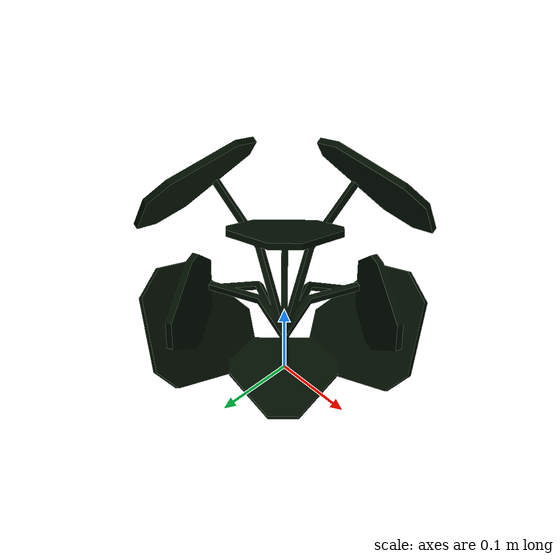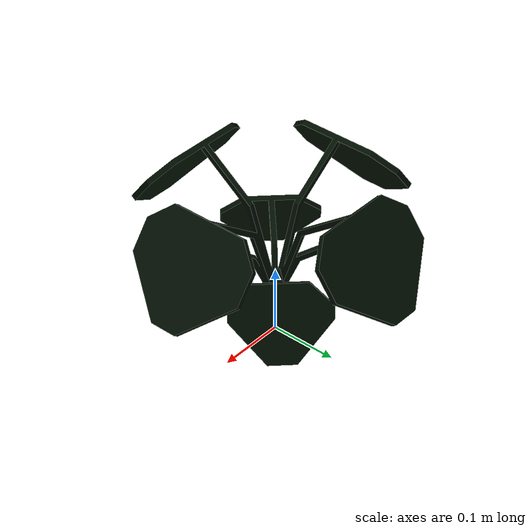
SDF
<?xml version="1.0" ?>
<sdf version="1.5">

<model name="plant1">
<static>1</static>
<pose>0.0 0.0 0.0 1.5707 0.0 0.0</pose>

  <link name="link">

    <visual name="visual">
      <geometry>
        <mesh>
          <uri>model://plant1/plant1.stl</uri>
        </mesh>
      </geometry>
      <material>
        <lighting>1</lighting>
        <ambient>0.0 0.5 0.0 1</ambient>
        <diffuse>0.0 0.05 0.0 1</diffuse>
        <specular>0.0 0.01 0.0 1</specular>
        <emissive>0 0 0 1</emissive>
        <shader type='vertex'>
          <normal_map>__default__</normal_map>
        </shader>
      </material>
      <cast_shadows>0</cast_shadows>
    </visual>

  </link>
</model>
</sdf>
